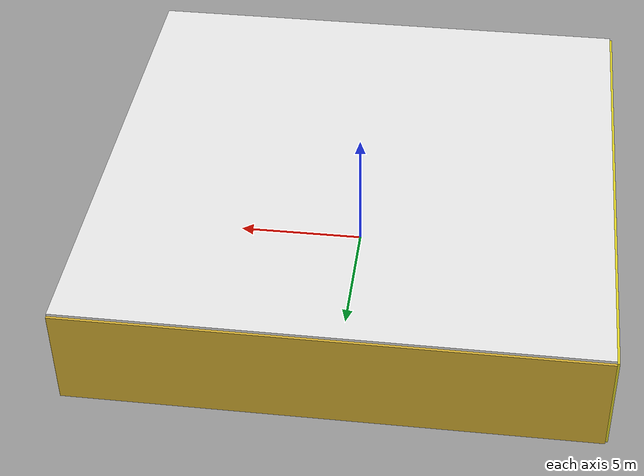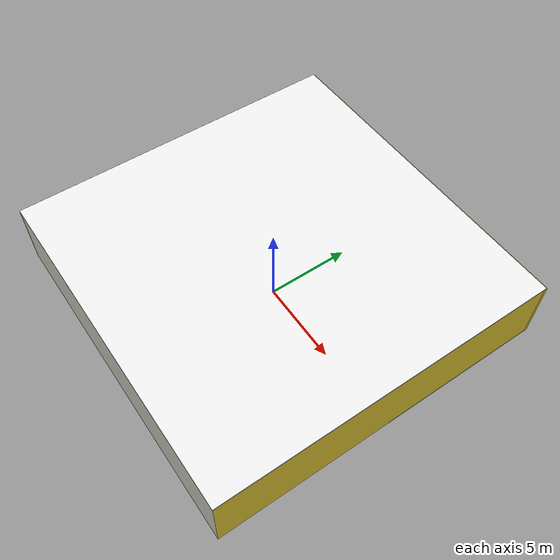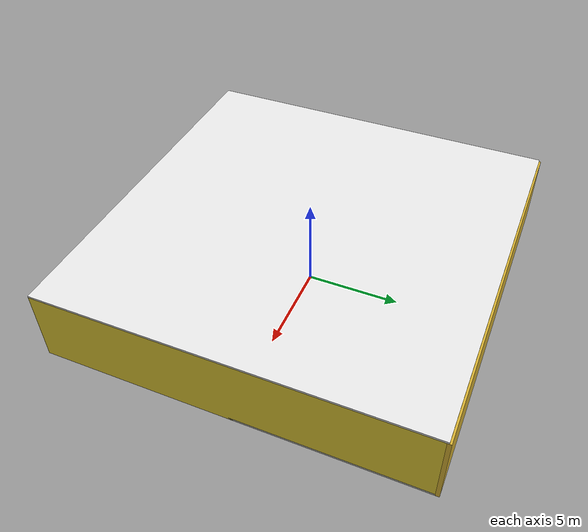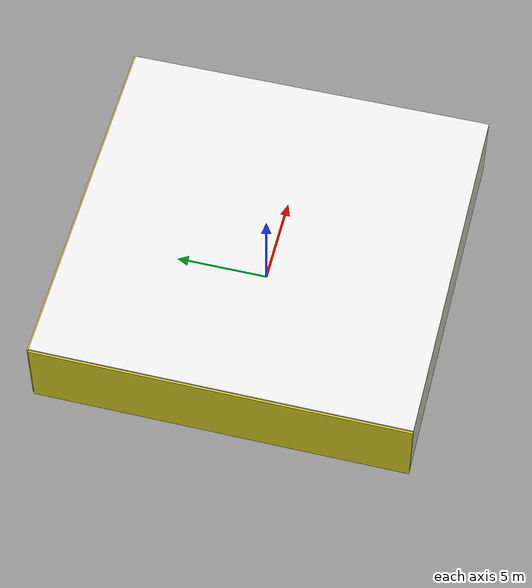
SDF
<sdf version="1.4">
 <world name="default">
  <physics type="ode">
   <max_step_size>0.001</max_step_size>
   <real_time_factor>1</real_time_factor>
   <real_time_update_rate>1000</real_time_update_rate>
   <gravity>0 0 -9.8</gravity>
  </physics>
  <scene><ambient>0.4 0.4 0.4 1</ambient><background>0.7 0.7 0.7 1</background><shadows>1</shadows></scene>
  <model name="Surrounding">
   <static>1</static>
   <link name="Ceiling">
    <collision name="Ceiling_Collision"><geometry><box><size>20 20 0.1</size></box></geometry></collision>
    <visual name="Ceiling_Visual">
     <geometry><box><size>20 20 0.1</size></box></geometry>
     <material>
      <script><uri>file://media/materials/scripts/gazebo.material</uri><name>Gazebo/WhiteGlow</name></script>
     </material>
    </visual>
    <pose>0 0 4.05 0 0 0</pose>
   </link>
   <link name="Wall_South">
    <collision name="Wall_South_Collision">
     <geometry><box><size>20 0 4</size></box></geometry>
     <pose>0 0 2 0 -0 0</pose>
    </collision>
    <visual name="Wall_South_Visual">
     <pose>0 0 2 0 -0 0</pose>
     <geometry><box><size>20 0 4</size></box></geometry>
     <material>
      <script><uri>file://media/materials/scripts/gazebo.material</uri><name>Gazebo/PaintedWall</name></script>
     </material>
    </visual>
    <velocity_decay><linear>0</linear><angular>0</angular></velocity_decay>
    <pose>0 -10 0 0 -0 0</pose>
   </link>
   <link name="Wall_East">
    <collision name="Wall_21_Collision">
     <geometry><box><size>20 0 4</size></box></geometry>
     <pose>0 0 2 0 -0 0</pose>
    </collision>
    <visual name="Wall_21_Visual">
     <pose>0 0 2 0 -0 0</pose>
     <geometry><box><size>20 0 4</size></box></geometry>
     <material>
      <script><uri>file://media/materials/scripts/gazebo.material</uri><name>Gazebo/ZincYellow</name></script>
     </material>
    </visual>
    <velocity_decay><linear>0</linear><angular>0</angular></velocity_decay>
    <pose>10 0 0 0 -0 1.5708</pose>
   </link>
   <link name="Wall_North">
    <collision name="Wall_22_Collision">
     <geometry><box><size>20 0.2 4</size></box></geometry>
     <pose>0 0 2 0 -0 0</pose>
    </collision>
    <visual name="Wall_22_Visual">
     <pose>0 0 2 0 -0 0</pose>
     <geometry><box><size>20 0.2 4</size></box></geometry>
     <material>
      <script><uri>file://media/materials/scripts/gazebo.material</uri><name>Gazebo/Gold</name></script>
     </material>
    </visual>
    <velocity_decay><linear>0</linear><angular>0</angular></velocity_decay>
    <pose>0 10 0 0 -0 0</pose>
   </link>
   <link name="Wall_West">
    <collision name="Wall_23_Collision">
     <geometry><box><size>20 0.2 4</size></box></geometry>
     <pose>0 0 2 0 -0 0</pose>
    </collision>
    <visual name="Wall_23_Visual">
     <pose>0 0 2 0 -0 0</pose>
     <geometry><box><size>20 0.2 4</size></box></geometry>
     <material>
      <script><uri>file://media/materials/scripts/gazebo.material</uri><name>Gazebo/Yellow</name></script>
     </material>
    </visual>
    <velocity_decay><linear>0</linear><angular>0</angular></velocity_decay>
    <pose>-10 0 0 0 0 -1.5708</pose>
   </link>
   <link name="Ground_link">
    <collision name="collision">
     <pose>0 0 .05 0 -0 0</pose>
     <geometry><box><size>20 20 0.1</size></box></geometry>
    </collision>
    <visual name="visual">
     <pose>0 0 .05 0 -0 0</pose>
     <geometry><box><size>20 20 0.1</size></box></geometry>
     <material>
      <script><uri>file://media/materials/scripts/gazebo.material</uri><name>Gazebo/PaintedWall</name></script>
     </material>
    </visual>
   </link>
   <static>1</static>
  </model>
  <spherical_coordinates>
   <surface_model>EARTH_WGS84</surface_model>
   <latitude_deg>0</latitude_deg>
   <longitude_deg>0</longitude_deg>
   <elevation>0</elevation>
   <heading_deg>0</heading_deg>
  </spherical_coordinates>
  <light name="lightball_0" type="diffuse">
   <diffuse>0.8 0.8 0.8 1</diffuse>
   <specular>0.2 0.2 0.2 1</specular>
   <attenuation>
    <range>100</range>
    <constant>0.7</constant>
    <linear>0.01</linear>
    <quadratic>0.001</quadratic>
   </attenuation>
   <direction>-0.5 0.1 -0.9</direction>
   <pose>9.617945185 2.42094962998 3.14134059758 0 0 0</pose>
  </light>
  <light name="lightball_1" type="diffuse">
   <diffuse>0.8 0.8 0.8 1</diffuse>
   <specular>0.2 0.2 0.2 1</specular>
   <attenuation>
    <range>100</range>
    <constant>0.7</constant>
    <linear>0.01</linear>
    <quadratic>0.001</quadratic>
   </attenuation>
   <direction>-0.5 0.1 -0.9</direction>
   <pose>7.71259944683 1.43904453523 2.86065674309 0 0 0</pose>
  </light>
  <include><uri>model://table</uri><pose>-7.86564929735 -6.88209576085 0 0 0 0.65572525967</pose></include>
  <include>
   <uri>model://robocup_3Dsim_goal</uri>
   <pose>-5.26605148239 -4.24714817808 0 0 0 0.775346130288</pose>
  </include>
  <include>
   <uri>model://textured_shapes</uri>
   <pose>-5.13405039299 -2.09402581047 0 0 0 2.42545942005</pose>
  </include>
  <include><uri>model://cabinet</uri><pose>-0.787785734655 -7.74684382131 0 0 0 0.471815452249</pose></include>
  <include><uri>model://cabinet</uri><pose>3.89540571533 -6.796797234 0 0 0 0.24921629778</pose></include>
  <include>
   <uri>model://robocup_3Dsim_goal</uri>
   <pose>7.40641804539 -5.06596993716 0 0 0 2.42646152649</pose>
  </include>
  <include>
   <uri>model://textured_shapes</uri>
   <pose>7.18589935013 2.18466244013 0 0 0 0.364997459899</pose>
  </include>
  <include>
   <uri>model://construction_cone</uri>
   <pose>8.18330077391 4.08575448271 0 0 0 1.74311339446</pose>
  </include>
 </world>
</sdf>

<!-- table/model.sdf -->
<sdf version="1.5">
  <model name="table">
    <static>true</static>
    <link name="link">
      <collision name="surface">
        <pose>0 0 1.0 0 0 0</pose>
        <geometry>
          <box>
            <size>1.5 0.8 0.03</size>
          </box>
        </geometry>
        <surface>
          <friction>
            <ode>
              <mu>0.6</mu>
              <mu2>0.6</mu2>
            </ode>
          </friction>
        </surface>
      </collision>
      <visual name="visual1">
        <pose>0 0 1.0 0 0 0</pose>
        <geometry>
          <box>
            <size>1.5 0.8 0.03</size>
          </box>
        </geometry>
        <material>
          <script>
            <uri>model://media/materials/scripts/gazebo.material</uri>
            <name>Gazebo/Wood</name>
          </script>
        </material>
      </visual>
      <collision name="front_left_leg">
        <pose>0.68 0.38 0.5 0 0 0</pose>
        <geometry>
          <cylinder>
            <radius>0.02</radius>
            <length>1.0</length>
          </cylinder>
        </geometry>
      </collision>
      <visual name="front_left_leg">
        <pose>0.68 0.38 0.5 0 0 0</pose>
        <geometry>
          <cylinder>
            <radius>0.02</radius>
            <length>1.0</length>
          </cylinder>
        </geometry>
        <material>
          <script>
            <uri>model://media/materials/scripts/gazebo.material</uri>
            <name>Gazebo/Grey</name>
          </script>
        </material>
      </visual>
      <collision name="front_right_leg">
        <pose>0.68 -0.38 0.5 0 0 0</pose>
        <geometry>
          <cylinder>
            <radius>0.02</radius>
            <length>1.0</length>
          </cylinder>
        </geometry>
      </collision>
      <visual name="front_right_leg">
        <pose>0.68 -0.38 0.5 0 0 0</pose>
        <geometry>
          <cylinder>
            <radius>0.02</radius>
            <length>1.0</length>
          </cylinder>
        </geometry>
        <material>
          <script>
            <uri>model://media/materials/scripts/gazebo.material</uri>
            <name>Gazebo/Grey</name>
          </script>
        </material>
      </visual>
      <collision name="back_right_leg">
        <pose>-0.68 -0.38 0.5 0 0 0</pose>
        <geometry>
          <cylinder>
            <radius>0.02</radius>
            <length>1.0</length>
          </cylinder>
        </geometry>
      </collision>
      <visual name="back_right_leg">
        <pose>-0.68 -0.38 0.5 0 0 0</pose>
        <geometry>
          <cylinder>
            <radius>0.02</radius>
            <length>1.0</length>
          </cylinder>
        </geometry>
        <material>
          <script>
            <uri>model://media/materials/scripts/gazebo.material</uri>
            <name>Gazebo/Grey</name>
          </script>
        </material>
      </visual>
      <collision name="back_left_leg">
        <pose>-0.68 0.38 0.5 0 0 0</pose>
        <geometry>
          <cylinder>
            <radius>0.02</radius>
            <length>1.0</length>
          </cylinder>
        </geometry>
      </collision>
      <visual name="back_left_leg">
        <pose>-0.68 0.38 0.5 0 0 0</pose>
        <geometry>
          <cylinder>
            <radius>0.02</radius>
            <length>1.0</length>
          </cylinder>
        </geometry>
        <material>
          <script>
            <uri>model://media/materials/scripts/gazebo.material</uri>
            <name>Gazebo/Grey</name>
          </script>
        </material>
      </visual>
    </link>
  </model>
</sdf>

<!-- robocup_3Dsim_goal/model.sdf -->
<sdf version="1.5">
  <model name="robocup_3d_goal">
    <static>true</static>
    <link name="left_post">
      <pose>0 1.05 0.45 0 0 0</pose>
      <collision name="collision">
        <geometry>
          <cylinder>
            <radius>0.05</radius>
            <length>0.9</length>
          </cylinder>
        </geometry>
      </collision>
      <visual name="visual">
        <geometry>
          <cylinder>
            <radius>0.05</radius>
            <length>0.9</length>
          </cylinder>
        </geometry>
        <material>
          <script>
            <uri>file://media/materials/scripts/gazebo.material</uri>
            <name>Gazebo/ZincYellow</name>
          </script>
        </material>
      </visual>
    </link>
    <link name="left_support_horiz_lower">
      <pose>0.30 1.05 0.01 0 0 0</pose>
      <collision name="collision">
        <geometry>
          <box>
            <size>0.50 0.02 0.02</size>
          </box>
        </geometry>
      </collision>
      <visual name="visual">
        <geometry>
          <box>
            <size>0.50 0.02 0.02</size>
          </box>
        </geometry>
        <material>
          <script>
            <uri>file://media/materials/scripts/gazebo.material</uri>
            <name>Gazebo/White</name>
          </script>
        </material>
      </visual>
    </link>
    <link name="left_support_horiz_upper">
      <pose>0.30 1.05 0.79 0 0 0</pose>
      <collision name="collision">
        <geometry>
          <box>
            <size>0.50 0.02 0.02</size>
          </box>
        </geometry>
      </collision>
      <visual name="visual">
        <geometry>
          <box>
            <size>0.50 0.02 0.02</size>
          </box>
        </geometry>
        <material>
          <script>
            <uri>file://media/materials/scripts/gazebo.material</uri>
            <name>Gazebo/White</name>
          </script>
        </material>
      </visual>
    </link>
    <link name="left_support_vertical">
      <pose>0.56 1.05 0.4 0 1.5708 0</pose>
      <collision name="collision">
        <geometry>
          <box>
            <size>0.80 0.02 0.02</size>
          </box>
        </geometry>
      </collision>
      <visual name="visual">
        <geometry>
          <box>
            <size>0.80 0.02 0.02</size>
          </box>
        </geometry>
        <material>
          <script>
            <uri>file://media/materials/scripts/gazebo.material</uri>
            <name>Gazebo/White</name>
          </script>
        </material>
      </visual>
    </link>
    <link name="right_support_horiz_lower">
      <pose>0.30 -1.05 0.01 0 0 0</pose>
      <collision name="collision">
        <geometry>
          <box>
            <size>0.50 0.02 0.02</size>
          </box>
        </geometry>
      </collision>
      <visual name="visual">
        <geometry>
          <box>
            <size>0.50 0.02 0.02</size>
          </box>
        </geometry>
        <material>
          <script>
            <uri>file://media/materials/scripts/gazebo.material</uri>
            <name>Gazebo/White</name>
          </script>
        </material>
      </visual>
    </link>
    <link name="right_support_horiz_upper">
      <pose>0.30 -1.05 0.79 0 0 0</pose>
      <collision name="collision">
        <geometry>
          <box>
            <size>0.50 0.02 0.02</size>
          </box>
        </geometry>
      </collision>
      <visual name="visual">
        <geometry>
          <box>
            <size>0.50 0.02 0.02</size>
          </box>
        </geometry>
        <material>
          <script>
            <uri>file://media/materials/scripts/gazebo.material</uri>
            <name>Gazebo/White</name>
          </script>
        </material>
      </visual>
    </link>
    <link name="right_support_vertical">
      <pose>0.56 -1.05 0.4 0 1.5708 0</pose>
      <collision name="collision">
        <geometry>
          <box>
            <size>0.80 0.02 0.02</size>
          </box>
        </geometry>
      </collision>
      <visual name="visual">
        <geometry>
          <box>
            <size>0.80 0.02 0.02</size>
          </box>
        </geometry>
        <material>
          <script>
            <uri>file://media/materials/scripts/gazebo.material</uri>
            <name>Gazebo/White</name>
          </script>
        </material>
      </visual>
    </link>
    <link name="center_support_horiz_lower">
      <pose>0.56 0 0.01 0 1.5708 0</pose>
      <collision name="collision">
        <geometry>
          <box>
            <size>0.02 2.08 0.02</size>
          </box>
        </geometry>
      </collision>
      <visual name="visual">
        <geometry>
          <box>
            <size>0.02 2.08 0.02</size>
          </box>
        </geometry>
        <material>
          <script>
            <uri>file://media/materials/scripts/gazebo.material</uri>
            <name>Gazebo/White</name>
          </script>
        </material>
      </visual>
    </link>
    <link name="center_support_horiz_upper">
      <pose>0.56 0 0.79 0 1.5708 0</pose>
      <collision name="collision">
        <geometry>
          <box>
            <size>0.02 2.08 0.02</size>
          </box>
        </geometry>
      </collision>
      <visual name="visual">
        <geometry>
          <box>
            <size>0.02 2.08 0.02</size>
          </box>
        </geometry>
        <material>
          <script>
            <uri>file://media/materials/scripts/gazebo.material</uri>
            <name>Gazebo/White</name>
          </script>
        </material>
      </visual>
    </link>
    <link name="right_post">
      <pose>0 -1.05 0.45 0 0 0</pose>
      <collision name="collision">
        <geometry>
          <cylinder>
            <radius>0.05</radius>
            <length>0.9</length>
          </cylinder>
        </geometry>
      </collision>
      <visual name="visual">
        <geometry>
          <cylinder>
            <radius>0.05</radius>
            <length>0.9</length>
          </cylinder>
        </geometry>
        <material>
          <script>
            <uri>file://media/materials/scripts/gazebo.material</uri>
            <name>Gazebo/ZincYellow</name>
          </script>
        </material>
      </visual>
    </link>
    <link name="crossbar">
      <pose>0 0 0.85 1.57 1.57 0</pose>
      <collision name="collision">
        <geometry>
          <cylinder>
            <radius>0.05</radius>
            <length>2.0</length>
          </cylinder>
        </geometry>
      </collision>
      <visual name="visual">
        <geometry>
          <cylinder>
            <radius>0.05</radius>
            <length>2.0</length>
          </cylinder>
        </geometry>
        <material>
          <script>
            <uri>file://media/materials/scripts/gazebo.material</uri>
            <name>Gazebo/ZincYellow</name>
          </script>
        </material>
      </visual>
    </link>
    <link name="center_net">
      <pose>0.56 0 0.40 0 0 0</pose>
      <collision name="collision">
        <geometry>
          <box>
            <size>0.01 2.1 0.80</size>
          </box>
        </geometry>
      </collision>
      <visual name="visual">
        <geometry>
          <box>
            <size>0.01 2.1 0.80</size>
          </box>
        </geometry>
        <material>
          <script>
            <uri>model://../model_source/models/robocup09_spl_field/materials/scripts/</uri>
            <uri>model://../model_source/models/robocup09_spl_field/materials/textures/</uri>
            <name>RoboCup/Net</name>
          </script>
        </material>
      </visual>
    </link>
    <link name="left_net">
      <pose>0.30 1.05 0.40 0 0 0</pose>
      <collision name="collision">
        <geometry>
          <box>
            <size>0.50 0.01 0.76</size>
          </box>
        </geometry>
      </collision>
      <visual name="visual">
        <geometry>
          <box>
            <size>0.50 0.01 0.76</size>
          </box>
        </geometry>
        <material>
          <script>
            <uri>model://../model_source/models/robocup09_spl_field/materials/scripts/</uri>
            <uri>model://../model_source/models/robocup09_spl_field/materials/textures/</uri>
            <name>RoboCup/Net</name>
          </script>
        </material>
      </visual>
    </link>
    <link name="right_net">
      <pose>0.30 -1.05 0.40 0 0 0</pose>
      <collision name="collision">
        <geometry>
          <box>
            <size>0.50 0.01 0.76</size>
          </box>
        </geometry>
      </collision>
      <visual name="visual">
        <geometry>
          <box>
            <size>0.50 0.01 0.76</size>
          </box>
        </geometry>
        <material>
          <script>
            <uri>model://../model_source/models/robocup09_spl_field/materials/scripts/</uri>
            <uri>model://../model_source/models/robocup09_spl_field/materials/textures/</uri>
            <name>RoboCup/Net</name>
          </script>
        </material>
      </visual>
    </link>
  </model>
</sdf>

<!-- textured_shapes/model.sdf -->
<sdf version="1.6">
  <model name="textured_shapes">
    <pose>0 0 0.5 0 0 0</pose>
    <link name="box">
      <pose>0 -1.5 0 0 0 0</pose>
      <collision name="collision">
        <geometry>
          <box>
            <size>1 1 1</size>
          </box>
        </geometry>
      </collision>
      <visual name="visual">
        <geometry>
          <box>
            <size>1 1 1</size>
          </box>
        </geometry>
        <material>
          <script>
            <uri>model://../model_source/models/textured_shapes/materials/scripts</uri>
            <uri>model://../model_source/models/textured_shapes/materials/textures</uri>
            <name>TexturedShape/Squares</name>
          </script>
        </material>
      </visual>
    </link>
    <link name="sphere">
      <collision name="collision">
        <geometry>
          <sphere>
            <radius>0.5</radius>
          </sphere>
        </geometry>
      </collision>
      <visual name="visual">
        <geometry>
          <sphere>
            <radius>0.5</radius>
          </sphere>
        </geometry>
        <material>
          <script>
            <uri>model://../model_source/models/textured_shapes/materials/scripts</uri>
            <uri>model://../model_source/models/textured_shapes/materials/textures</uri>
            <name>TexturedShape/Squares</name>
          </script>
        </material>
      </visual>
    </link>
    <link name="cylinder">
      <pose>0 1.5 0 0 0 0</pose>
      <collision name="collision">
        <geometry>
          <cylinder>
            <radius>0.5</radius>
            <length>1</length>
          </cylinder>
        </geometry>
      </collision>
      <visual name="visual">
        <geometry>
          <cylinder>
            <radius>0.5</radius>
            <length>1</length>
          </cylinder>
        </geometry>
        <material>
          <script>
            <uri>model://../model_source/models/textured_shapes/materials/scripts</uri>
            <uri>model://../model_source/models/textured_shapes/materials/textures</uri>
            <name>TexturedShape/Squares</name>
          </script>
        </material>
      </visual>
    </link>
  </model>
</sdf>

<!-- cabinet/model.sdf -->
<sdf version="1.5">
  <model name="cabinet">
    <static>true</static>
    <link name="cabinet_bottom_plate">
      <inertial>
        <pose>0 0 -1 0 0 0</pose>
        <inertia>
          <ixx>2.050000</ixx>
          <ixy>0</ixy>
          <ixz>0</ixz>
          <iyy>2.050000</iyy>
          <iyz>0</iyz>
          <izz>2.050000</izz>
        </inertia>
        <mass>25.000000</mass>
      </inertial>
      <collision name="cabinet_bottom_plate_geom">
        <pose>0 0 0.010000 0 0 0</pose>
        <geometry>
          <box>
            <size>0.450000 0.450000 0.020000</size>
          </box>
        </geometry>
      </collision>
      <visual name="cabinet_bottom_plate_geom_visual">
        <pose>0 0 0.010000 0 0 0</pose>
        <geometry>
          <box>
            <size>0.450000 0.450000 0.020000</size>
          </box>
        </geometry>
        <material>
          <script>
            <uri>model://media/materials/scripts/gazebo.material</uri>
            <name>Gazebo/Wood</name>
          </script>
        </material>
      </visual>
      <collision name="cabinet_bottom_plate_geom_cabinet_back_plate">
        <pose>0.235000 0 0.510000 0 0 0</pose>
        <geometry>
          <box>
            <size>0.020000 0.450000 1.020000</size>
          </box>
        </geometry>
      </collision>
      <visual name="cabinet_bottom_plate_geom_cabinet_back_plate_visual">
        <pose>0.235000 0 0.510000 0 0 0</pose>
        <geometry>
          <box>
            <size>0.020000 0.450000 1.020000</size>
          </box>
        </geometry>
        <material>
          <script>
            <uri>model://media/materials/scripts/gazebo.material</uri>
            <name>Gazebo/Wood</name>
          </script>
        </material>
      </visual>
      <collision name="cabinet_bottom_plate_geom_cabinet_left_plate">
        <pose>0 0.235000 0.510000 0 0 0</pose>
        <geometry>
          <box>
            <size>0.450000 0.020000 1.020000</size>
          </box>
        </geometry>
      </collision>
      <visual name="cabinet_bottom_plate_geom_cabinet_left_plate_visual">
        <pose>0 0.235000 0.510000 0 0 0</pose>
        <geometry>
          <box>
            <size>0.450000 0.020000 1.020000</size>
          </box>
        </geometry>
        <material>
          <script>
            <uri>model://media/materials/scripts/gazebo.material</uri>
            <name>Gazebo/Wood</name>
          </script>
        </material>
      </visual>
      <collision name="cabinet_bottom_plate_geom_cabinet_middle_plate">
        <pose>0 0 0.510000 0 0 0</pose>
        <geometry>
          <box>
            <size>0.450000 0.450000 0.020000</size>
          </box>
        </geometry>
      </collision>
      <visual name="cabinet_bottom_plate_geom_cabinet_middle_plate_visual">
        <pose>0 0 0.510000 0 0 0</pose>
        <geometry>
          <box>
            <size>0.450000 0.450000 0.020000</size>
          </box>
        </geometry>
        <material>
          <script>
            <uri>model://media/materials/scripts/gazebo.material</uri>
            <name>Gazebo/Wood</name>
          </script>
        </material>
      </visual>
      <collision name="cabinet_bottom_plate_geom_cabinet_right_plate">
        <pose>0 -0.235000 0.510000 0 0 0</pose>
        <geometry>
          <box>
            <size>0.450000 0.020000 1.020000</size>
          </box>
        </geometry>
      </collision>
      <visual name="cabinet_bottom_plate_geom_cabinet_right_plate_visual">
        <pose>0 -0.235000 0.510000 0 0 0</pose>
        <geometry>
          <box>
            <size>0.450000 0.020000 1.020000</size>
          </box>
        </geometry>
        <material>
          <script>
            <uri>model://media/materials/scripts/gazebo.material</uri>
            <name>Gazebo/Wood</name>
          </script>
        </material>
      </visual>
      <collision name="cabinet_bottom_plate_geom_cabinet_top_plate">
        <pose>0 0 1.010000 0 0 0</pose>
        <geometry>
          <box>
            <size>0.450000 0.450000 0.020000</size>
          </box>
        </geometry>
      </collision>
      <visual name="cabinet_bottom_plate_geom_cabinet_top_plate_visual">
        <pose>0 0 1.010000 0 0 0</pose>
        <geometry>
          <box>
            <size>0.450000 0.450000 0.020000</size>
          </box>
        </geometry>
        <material>
          <script>
            <uri>model://media/materials/scripts/gazebo.material</uri>
            <name>Gazebo/Wood</name>
          </script>
        </material>
      </visual>
    </link>
  </model>
</sdf>

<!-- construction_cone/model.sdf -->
<sdf version="1.5">
  <model name="Construction Cone">
    <link name="link">
      <collision name="collision">
        <geometry>
          <mesh>
            <scale>10 10 10</scale>
            <uri>file://isr-testbed/construction_cone/meshes/construction_cone.dae</uri>
          </mesh>
        </geometry>
      </collision>
      <visual name="visual">
        <geometry>
          <mesh>
            <scale>10 10 10</scale>
            <uri>file://isr-testbed/construction_cone/meshes/construction_cone.dae</uri>
          </mesh>
        </geometry>
      </visual>
    </link>
  </model>
</sdf>
